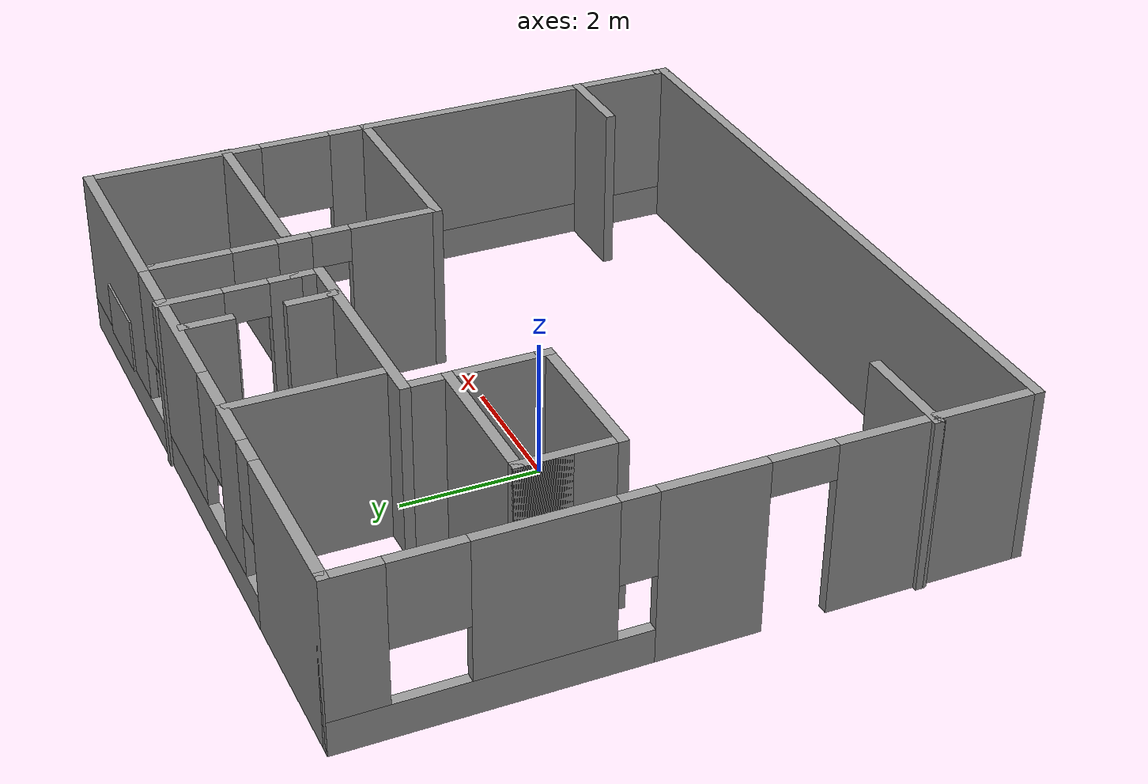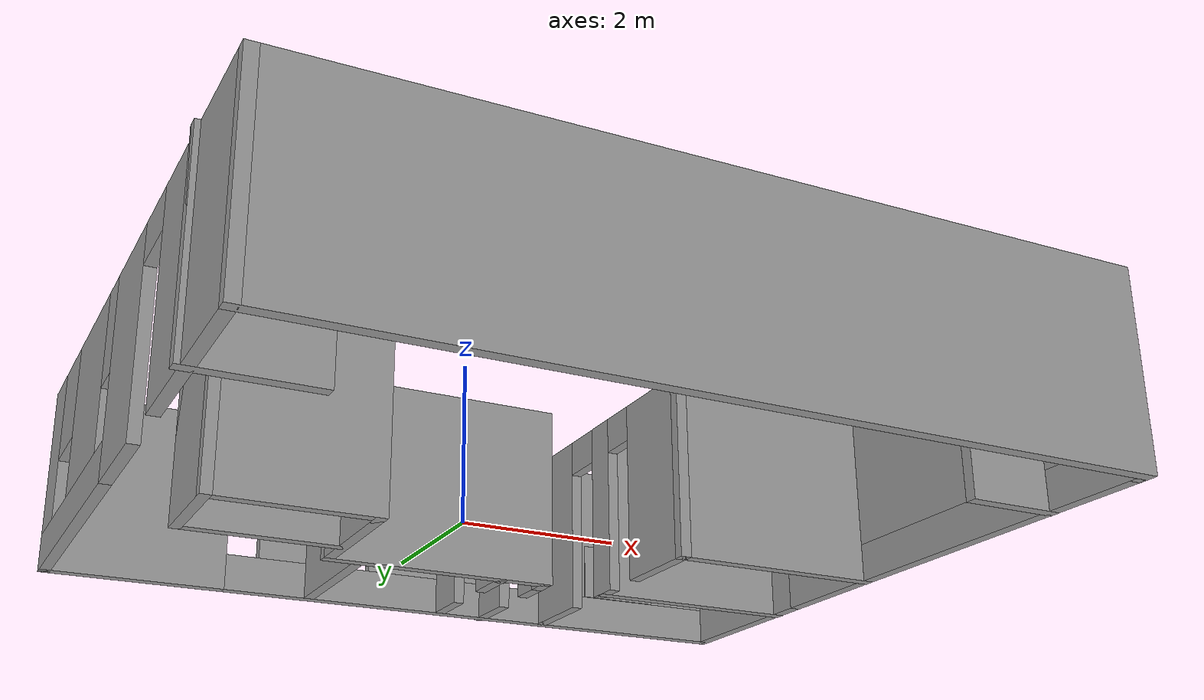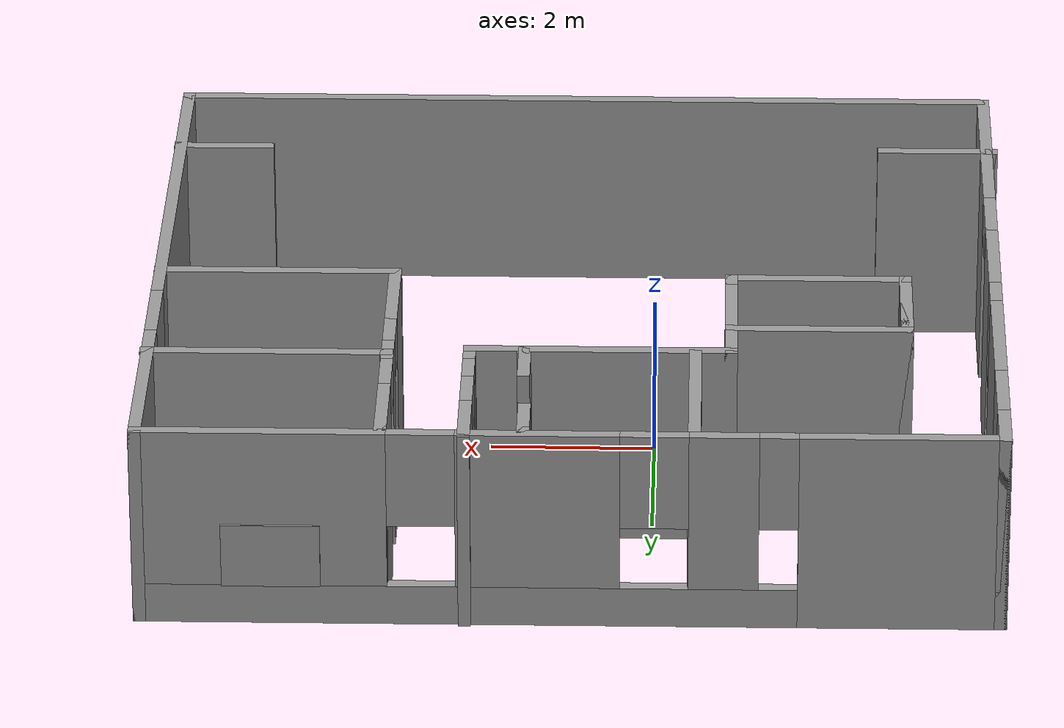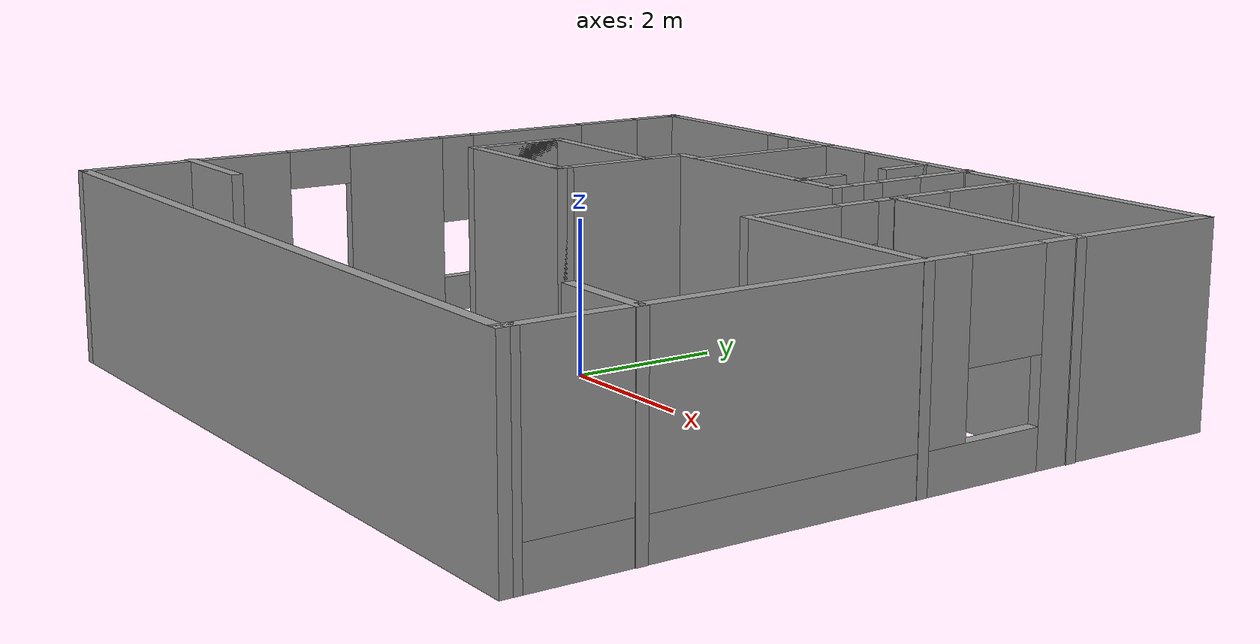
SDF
<?xml version='1.0'?>
<sdf version='1.7'>
  <model name='Floorplan2'>
    <pose>0.917459 -0.180411 0 0 -0 0</pose>
    <link name='Wall_0'>
      <pose>0.025131 4.5809 0 0 -0 0</pose>
      <visual name='Wall_0_Visual_0'>
        <pose>-3.89474 0 1.25 0 -0 0</pose>
        <geometry>
          <box>
            <size>2.46053 0.15 2.5</size>
          </box>
        </geometry>
        <material>
          <script>
            <uri>file://media/materials/scripts/gazebo.material</uri>
            <name>Gazebo/Grey</name>
          </script>
          <ambient>1 1 1 1</ambient>
        </material>
        <meta>
          <layer>0</layer>
        </meta>
      </visual>
      <collision name='Wall_0_Collision_0'>
        <geometry>
          <box>
            <size>2.46053 0.15 2.5</size>
          </box>
        </geometry>
        <pose>-3.89474 0 1.25 0 -0 0</pose>
      </collision>
      <visual name='Wall_0_Visual_1'>
        <pose>1.23026 0 0.25 0 -0 0</pose>
        <geometry>
          <box>
            <size>7.78948 0.15 0.5</size>
          </box>
        </geometry>
        <material>
          <script>
            <uri>file://media/materials/scripts/gazebo.material</uri>
            <name>Gazebo/Grey</name>
          </script>
          <ambient>1 1 1 1</ambient>
        </material>
        <meta>
          <layer>0</layer>
        </meta>
      </visual>
      <collision name='Wall_0_Collision_1'>
        <geometry>
          <box>
            <size>7.78948 0.15 0.5</size>
          </box>
        </geometry>
        <pose>1.23026 0 0.25 0 -0 0</pose>
      </collision>
      <visual name='Wall_0_Visual_2'>
        <pose>-1.79448 0 1.5 0 -0 0</pose>
        <geometry>
          <box>
            <size>0.82 0.15 2</size>
          </box>
        </geometry>
        <material>
          <script>
            <uri>file://media/materials/scripts/gazebo.material</uri>
            <name>Gazebo/Grey</name>
          </script>
          <ambient>1 1 1 1</ambient>
        </material>
        <meta>
          <layer>0</layer>
        </meta>
      </visual>
      <collision name='Wall_0_Collision_2'>
        <geometry>
          <box>
            <size>0.82 0.15 2</size>
          </box>
        </geometry>
        <pose>-1.79448 0 1.5 0 -0 0</pose>
      </collision>
      <visual name='Wall_0_Visual_3'>
        <pose>0.375525 0 1.5 0 -0 0</pose>
        <geometry>
          <box>
            <size>1.92 0.15 2</size>
          </box>
        </geometry>
        <material>
          <script>
            <uri>file://media/materials/scripts/gazebo.material</uri>
            <name>Gazebo/Grey</name>
          </script>
          <ambient>1 1 1 1</ambient>
        </material>
        <meta>
          <layer>0</layer>
        </meta>
      </visual>
      <collision name='Wall_0_Collision_3'>
        <geometry>
          <box>
            <size>1.92 0.15 2</size>
          </box>
        </geometry>
        <pose>0.375525 0 1.5 0 -0 0</pose>
      </collision>
      <visual name='Wall_0_Visual_4'>
        <pose>3.63026 0 1.5 0 -0 0</pose>
        <geometry>
          <box>
            <size>2.98948 0.15 2</size>
          </box>
        </geometry>
        <material>
          <script>
            <uri>file://media/materials/scripts/gazebo.material</uri>
            <name>Gazebo/Grey</name>
          </script>
          <ambient>1 1 1 1</ambient>
        </material>
        <meta>
          <layer>0</layer>
        </meta>
      </visual>
      <collision name='Wall_0_Collision_4'>
        <geometry>
          <box>
            <size>2.98948 0.15 2</size>
          </box>
        </geometry>
        <pose>3.63026 0 1.5 0 -0 0</pose>
      </collision>
      <visual name='Wall_0_Visual_5'>
        <pose>-2.43447 0 1.9 0 -0 0</pose>
        <geometry>
          <box>
            <size>0.46 0.15 1.2</size>
          </box>
        </geometry>
        <material>
          <script>
            <uri>file://media/materials/scripts/gazebo.material</uri>
            <name>Gazebo/Grey</name>
          </script>
          <ambient>1 1 1 1</ambient>
        </material>
        <meta>
          <layer>0</layer>
        </meta>
      </visual>
      <collision name='Wall_0_Collision_5'>
        <geometry>
          <box>
            <size>0.46 0.15 1.2</size>
          </box>
        </geometry>
        <pose>-2.43447 0 1.9 0 -0 0</pose>
      </collision>
      <visual name='Wall_0_Visual_6'>
        <pose>-0.984475 0 1.9 0 -0 0</pose>
        <geometry>
          <box>
            <size>0.8 0.15 1.2</size>
          </box>
        </geometry>
        <material>
          <script>
            <uri>file://media/materials/scripts/gazebo.material</uri>
            <name>Gazebo/Grey</name>
          </script>
          <ambient>1 1 1 1</ambient>
        </material>
        <meta>
          <layer>0</layer>
        </meta>
      </visual>
      <collision name='Wall_0_Collision_6'>
        <geometry>
          <box>
            <size>0.8 0.15 1.2</size>
          </box>
        </geometry>
        <pose>-0.984475 0 1.9 0 -0 0</pose>
      </collision>
      <visual name='Wall_0_Visual_7'>
        <pose>1.73552 0 1.9 0 -0 0</pose>
        <geometry>
          <box>
            <size>0.8 0.15 1.2</size>
          </box>
        </geometry>
        <material>
          <script>
            <uri>file://media/materials/scripts/gazebo.material</uri>
            <name>Gazebo/Grey</name>
          </script>
          <ambient>1 1 1 1</ambient>
        </material>
        <meta>
          <layer>0</layer>
        </meta>
      </visual>
      <collision name='Wall_0_Collision_7'>
        <geometry>
          <box>
            <size>0.8 0.15 1.2</size>
          </box>
        </geometry>
        <pose>1.73552 0 1.9 0 -0 0</pose>
      </collision>
    </link>
    <link name='Wall_1'>
      <pose>5.07513 0.030898 0 0 -0 -1.5708</pose>
      <visual name='Wall_1_Visual_0'>
        <pose>-3.31014 0 1.25 0 -0 0</pose>
        <geometry>
          <box>
            <size>2.62972 0.15 2.5</size>
          </box>
        </geometry>
        <material>
          <script>
            <uri>file://media/materials/scripts/gazebo.material</uri>
            <name>Gazebo/Grey</name>
          </script>
          <ambient>1 1 1 1</ambient>
        </material>
        <meta>
          <layer>0</layer>
        </meta>
      </visual>
      <collision name='Wall_1_Collision_0'>
        <geometry>
          <box>
            <size>2.62972 0.15 2.5</size>
          </box>
        </geometry>
        <pose>-3.31014 0 1.25 0 -0 0</pose>
      </collision>
      <visual name='Wall_1_Visual_1'>
        <pose>1.31486 0 0.25 0 -0 0</pose>
        <geometry>
          <box>
            <size>6.62028 0.15 0.5</size>
          </box>
        </geometry>
        <material>
          <script>
            <uri>file://media/materials/scripts/gazebo.material</uri>
            <name>Gazebo/Grey</name>
          </script>
          <ambient>1 1 1 1</ambient>
        </material>
        <meta>
          <layer>0</layer>
        </meta>
      </visual>
      <collision name='Wall_1_Collision_1'>
        <geometry>
          <box>
            <size>6.62028 0.15 0.5</size>
          </box>
        </geometry>
        <pose>1.31486 0 0.25 0 -0 0</pose>
      </collision>
      <visual name='Wall_1_Visual_2'>
        <pose>1.84486 0 1.5 0 -0 0</pose>
        <geometry>
          <box>
            <size>5.56028 0.15 2</size>
          </box>
        </geometry>
        <material>
          <script>
            <uri>file://media/materials/scripts/gazebo.material</uri>
            <name>Gazebo/Grey</name>
          </script>
          <ambient>1 1 1 1</ambient>
        </material>
        <meta>
          <layer>0</layer>
        </meta>
      </visual>
      <collision name='Wall_1_Collision_2'>
        <geometry>
          <box>
            <size>5.56028 0.15 2</size>
          </box>
        </geometry>
        <pose>1.84486 0 1.5 0 -0 0</pose>
      </collision>
      <visual name='Wall_1_Visual_3'>
        <pose>-1.46528 0 1.9 0 -0 0</pose>
        <geometry>
          <box>
            <size>1.06 0.15 1.2</size>
          </box>
        </geometry>
        <material>
          <script>
            <uri>file://media/materials/scripts/gazebo.material</uri>
            <name>Gazebo/Grey</name>
          </script>
          <ambient>1 1 1 1</ambient>
        </material>
        <meta>
          <layer>0</layer>
        </meta>
      </visual>
      <collision name='Wall_1_Collision_3'>
        <geometry>
          <box>
            <size>1.06 0.15 1.2</size>
          </box>
        </geometry>
        <pose>-1.46528 0 1.9 0 -0 0</pose>
      </collision>
    </link>
    <link name='Wall_10'>
      <collision name='Wall_10_Collision'>
        <geometry>
          <box>
            <size>1.25 0.15 2.5</size>
          </box>
        </geometry>
        <pose>0 0 1.25 0 -0 0</pose>
      </collision>
      <visual name='Wall_10_Visual'>
        <pose>0 0 1.25 0 -0 0</pose>
        <geometry>
          <box>
            <size>1.25 0.15 2.5</size>
          </box>
        </geometry>
        <material>
          <script>
            <uri>file://media/materials/scripts/gazebo.material</uri>
            <name>Gazebo/Grey</name>
          </script>
          <ambient>1 1 1 1</ambient>
        </material>
        <meta>
          <layer>0</layer>
        </meta>
      </visual>
      <pose>4.5325 -3.13926 0 0 -0 0</pose>
    </link>
    <link name='Wall_11'>
      <collision name='Wall_11_Collision'>
        <geometry>
          <box>
            <size>0.15 0.15 2.5</size>
          </box>
        </geometry>
        <pose>0 0 1.25 0 -0 0</pose>
      </collision>
      <visual name='Wall_11_Visual'>
        <pose>0 0 1.25 0 -0 0</pose>
        <geometry>
          <box>
            <size>0.15 0.15 2.5</size>
          </box>
        </geometry>
        <material>
          <script>
            <uri>file://media/materials/scripts/gazebo.material</uri>
            <name>Gazebo/Grey</name>
          </script>
          <ambient>1 1 1 1</ambient>
        </material>
        <meta>
          <layer>0</layer>
        </meta>
      </visual>
      <pose>5.0825 -3.13926 0 0 -0 0</pose>
    </link>
    <link name='Wall_13'>
      <collision name='Wall_13_Collision'>
        <geometry>
          <box>
            <size>3 0.15 2.5</size>
          </box>
        </geometry>
        <pose>0 0 1.25 0 -0 0</pose>
      </collision>
      <visual name='Wall_13_Visual'>
        <pose>0 0 1.25 0 -0 0</pose>
        <geometry>
          <box>
            <size>3 0.15 2.5</size>
          </box>
        </geometry>
        <material>
          <script>
            <uri>file://media/materials/scripts/gazebo.material</uri>
            <name>Gazebo/Grey</name>
          </script>
          <ambient>1 1 1 1</ambient>
        </material>
        <meta>
          <layer>0</layer>
        </meta>
      </visual>
      <pose>3.65315 0.373782 0 0 -0 3.14159</pose>
    </link>
    <link name='Wall_14'>
      <pose>2.22815 2.42378 0 0 -0 1.5708</pose>
      <visual name='Wall_14_Visual_0'>
        <pose>-1.44632 0 1.25 0 -0 0</pose>
        <geometry>
          <box>
            <size>1.35737 0.15 2.5</size>
          </box>
        </geometry>
        <material>
          <script>
            <uri>file://media/materials/scripts/gazebo.material</uri>
            <name>Gazebo/Grey</name>
          </script>
          <ambient>1 1 1 1</ambient>
        </material>
        <meta>
          <layer>0</layer>
        </meta>
      </visual>
      <collision name='Wall_14_Collision_0'>
        <geometry>
          <box>
            <size>1.35737 0.15 2.5</size>
          </box>
        </geometry>
        <pose>-1.44632 0 1.25 0 -0 0</pose>
      </collision>
      <visual name='Wall_14_Visual_1'>
        <pose>0.039069 0 1.25 0 -0 0</pose>
        <geometry>
          <box>
            <size>0.484072 0.15 2.5</size>
          </box>
        </geometry>
        <material>
          <script>
            <uri>file://media/materials/scripts/gazebo.material</uri>
            <name>Gazebo/Grey</name>
          </script>
          <ambient>1 1 1 1</ambient>
        </material>
        <meta>
          <layer>0</layer>
        </meta>
      </visual>
      <collision name='Wall_14_Collision_1'>
        <geometry>
          <box>
            <size>0.484072 0.15 2.5</size>
          </box>
        </geometry>
        <pose>0.039069 0 1.25 0 -0 0</pose>
      </collision>
      <visual name='Wall_14_Visual_2'>
        <pose>1.52484 0 1.25 0 -0 0</pose>
        <geometry>
          <box>
            <size>1.20033 0.15 2.5</size>
          </box>
        </geometry>
        <material>
          <script>
            <uri>file://media/materials/scripts/gazebo.material</uri>
            <name>Gazebo/Grey</name>
          </script>
          <ambient>1 1 1 1</ambient>
        </material>
        <meta>
          <layer>0</layer>
        </meta>
      </visual>
      <collision name='Wall_14_Collision_2'>
        <geometry>
          <box>
            <size>1.20033 0.15 2.5</size>
          </box>
        </geometry>
        <pose>1.52484 0 1.25 0 -0 0</pose>
      </collision>
      <visual name='Wall_14_Visual_3'>
        <pose>-0.4853 0 2.25 0 -0 0</pose>
        <geometry>
          <box>
            <size>0.564667 0.15 0.5</size>
          </box>
        </geometry>
        <material>
          <script>
            <uri>file://media/materials/scripts/gazebo.material</uri>
            <name>Gazebo/Grey</name>
          </script>
          <ambient>1 1 1 1</ambient>
        </material>
        <meta>
          <layer>0</layer>
        </meta>
      </visual>
      <collision name='Wall_14_Collision_3'>
        <geometry>
          <box>
            <size>0.564667 0.15 0.5</size>
          </box>
        </geometry>
        <pose>-0.4853 0 2.25 0 -0 0</pose>
      </collision>
      <visual name='Wall_14_Visual_4'>
        <pose>0.602889 0 2.25 0 -0 0</pose>
        <geometry>
          <box>
            <size>0.643569 0.15 0.5</size>
          </box>
        </geometry>
        <material>
          <script>
            <uri>file://media/materials/scripts/gazebo.material</uri>
            <name>Gazebo/Grey</name>
          </script>
          <ambient>1 1 1 1</ambient>
        </material>
        <meta>
          <layer>0</layer>
        </meta>
      </visual>
      <collision name='Wall_14_Collision_4'>
        <geometry>
          <box>
            <size>0.643569 0.15 0.5</size>
          </box>
        </geometry>
        <pose>0.602889 0 2.25 0 -0 0</pose>
      </collision>
    </link>
    <link name='Wall_15'>
      <collision name='Wall_15_Collision'>
        <geometry>
          <box>
            <size>0.15 0.15 2.5</size>
          </box>
        </geometry>
        <pose>0 0 1.25 0 -0 0</pose>
      </collision>
      <visual name='Wall_15_Visual'>
        <pose>0 0 1.25 0 -0 0</pose>
        <geometry>
          <box>
            <size>0.15 0.15 2.5</size>
          </box>
        </geometry>
        <material>
          <script>
            <uri>file://media/materials/scripts/gazebo.material</uri>
            <name>Gazebo/Grey</name>
          </script>
          <ambient>1 1 1 1</ambient>
        </material>
        <meta>
          <layer>0</layer>
        </meta>
      </visual>
      <pose>2.22815 4.47378 0 0 -0 0</pose>
    </link>
    <link name='Wall_17'>
      <collision name='Wall_17_Collision'>
        <geometry>
          <box>
            <size>3 0.15 2.5</size>
          </box>
        </geometry>
        <pose>0 0 1.25 0 -0 0</pose>
      </collision>
      <visual name='Wall_17_Visual'>
        <pose>0 0 1.25 0 -0 0</pose>
        <geometry>
          <box>
            <size>3 0.15 2.5</size>
          </box>
        </geometry>
        <material>
          <script>
            <uri>file://media/materials/scripts/gazebo.material</uri>
            <name>Gazebo/Grey</name>
          </script>
          <ambient>1 1 1 1</ambient>
        </material>
        <meta>
          <layer>0</layer>
        </meta>
      </visual>
      <pose>3.66424 2.53751 0 0 -0 3.14159</pose>
    </link>
    <link name='Wall_18'>
      <collision name='Wall_18_Collision'>
        <geometry>
          <box>
            <size>0.15 0.15 2.5</size>
          </box>
        </geometry>
        <pose>0 0 1.25 0 -0 0</pose>
      </collision>
      <visual name='Wall_18_Visual'>
        <pose>0 0 1.25 0 -0 0</pose>
        <geometry>
          <box>
            <size>0.15 0.15 2.5</size>
          </box>
        </geometry>
        <material>
          <script>
            <uri>file://media/materials/scripts/gazebo.material</uri>
            <name>Gazebo/Grey</name>
          </script>
          <ambient>1 1 1 1</ambient>
        </material>
        <meta>
          <layer>0</layer>
        </meta>
      </visual>
      <pose>2.23924 2.53751 0 0 -0 0</pose>
    </link>
    <link name='Wall_2'>
      <collision name='Wall_2_Collision'>
        <geometry>
          <box>
            <size>0.25 0.15 2.5</size>
          </box>
        </geometry>
        <pose>0 0 1.25 0 -0 0</pose>
      </collision>
      <visual name='Wall_2_Visual'>
        <pose>0 0 1.25 0 -0 0</pose>
        <geometry>
          <box>
            <size>0.25 0.15 2.5</size>
          </box>
        </geometry>
        <material>
          <script>
            <uri>file://media/materials/scripts/gazebo.material</uri>
            <name>Gazebo/Grey</name>
          </script>
          <ambient>1 1 1 1</ambient>
        </material>
        <meta>
          <layer>0</layer>
        </meta>
      </visual>
      <pose>5.07513 -4.5691 0 0 -0 -1.5708</pose>
    </link>
    <link name='Wall_20'>
      <pose>1.25695 3.6941 0 0 -0 -1.5708</pose>
      <visual name='Wall_20_Visual_0'>
        <pose>-0.538045 0 1.25 0 -0 0</pose>
        <geometry>
          <box>
            <size>0.92391 0.15 2.5</size>
          </box>
        </geometry>
        <material>
          <script>
            <uri>file://media/materials/scripts/gazebo.material</uri>
            <name>Gazebo/Grey</name>
          </script>
          <ambient>1 1 1 1</ambient>
        </material>
        <meta>
          <layer>0</layer>
        </meta>
      </visual>
      <collision name='Wall_20_Collision_0'>
        <geometry>
          <box>
            <size>0.92391 0.15 2.5</size>
          </box>
        </geometry>
        <pose>-0.538045 0 1.25 0 -0 0</pose>
      </collision>
      <visual name='Wall_20_Visual_1'>
        <pose>0.775648 0 1.25 0 -0 0</pose>
        <geometry>
          <box>
            <size>0.448704 0.15 2.5</size>
          </box>
        </geometry>
        <material>
          <script>
            <uri>file://media/materials/scripts/gazebo.material</uri>
            <name>Gazebo/Grey</name>
          </script>
          <ambient>1 1 1 1</ambient>
        </material>
        <meta>
          <layer>0</layer>
        </meta>
      </visual>
      <collision name='Wall_20_Collision_1'>
        <geometry>
          <box>
            <size>0.448704 0.15 2.5</size>
          </box>
        </geometry>
        <pose>0.775648 0 1.25 0 -0 0</pose>
      </collision>
      <visual name='Wall_20_Visual_2'>
        <pose>0.237603 0 2.25 0 -0 0</pose>
        <geometry>
          <box>
            <size>0.627386 0.15 0.5</size>
          </box>
        </geometry>
        <material>
          <script>
            <uri>file://media/materials/scripts/gazebo.material</uri>
            <name>Gazebo/Grey</name>
          </script>
          <ambient>1 1 1 1</ambient>
        </material>
        <meta>
          <layer>0</layer>
        </meta>
      </visual>
      <collision name='Wall_20_Collision_2'>
        <geometry>
          <box>
            <size>0.627386 0.15 0.5</size>
          </box>
        </geometry>
        <pose>0.237603 0 2.25 0 -0 0</pose>
      </collision>
    </link>
    <link name='Wall_21'>
      <collision name='Wall_21_Collision'>
        <geometry>
          <box>
            <size>0.5 0.15 2.5</size>
          </box>
        </geometry>
        <pose>0 0 1.25 0 -0 0</pose>
      </collision>
      <visual name='Wall_21_Visual'>
        <pose>0 0 1.25 0 -0 0</pose>
        <geometry>
          <box>
            <size>0.5 0.15 2.5</size>
          </box>
        </geometry>
        <material>
          <script>
            <uri>file://media/materials/scripts/gazebo.material</uri>
            <name>Gazebo/Grey</name>
          </script>
          <ambient>1 1 1 1</ambient>
        </material>
        <meta>
          <layer>0</layer>
        </meta>
      </visual>
      <pose>1.25695 2.5941 0 0 -0 -1.5708</pose>
    </link>
    <link name='Wall_22'>
      <collision name='Wall_22_Collision'>
        <geometry>
          <box>
            <size>3.25 0.15 2.5</size>
          </box>
        </geometry>
        <pose>0 0 1.25 0 -0 0</pose>
      </collision>
      <visual name='Wall_22_Visual'>
        <pose>0 0 1.25 0 -0 0</pose>
        <geometry>
          <box>
            <size>3.25 0.15 2.5</size>
          </box>
        </geometry>
        <material>
          <script>
            <uri>file://media/materials/scripts/gazebo.material</uri>
            <name>Gazebo/Grey</name>
          </script>
          <ambient>1 1 1 1</ambient>
        </material>
        <meta>
          <layer>0</layer>
        </meta>
      </visual>
      <pose>-0.293048 2.4191 0 0 -0 3.14159</pose>
    </link>
    <link name='Wall_23'>
      <collision name='Wall_23_Collision'>
        <geometry>
          <box>
            <size>2 0.15 2.5</size>
          </box>
        </geometry>
        <pose>0 0 1.25 0 -0 0</pose>
      </collision>
      <visual name='Wall_23_Visual'>
        <pose>0 0 1.25 0 -0 0</pose>
        <geometry>
          <box>
            <size>2 0.15 2.5</size>
          </box>
        </geometry>
        <material>
          <script>
            <uri>file://media/materials/scripts/gazebo.material</uri>
            <name>Gazebo/Grey</name>
          </script>
          <ambient>1 1 1 1</ambient>
        </material>
        <meta>
          <layer>0</layer>
        </meta>
      </visual>
      <pose>-1.84305 1.4941 0 0 -0 -1.5708</pose>
    </link>
    <link name='Wall_24'>
      <collision name='Wall_24_Collision'>
        <geometry>
          <box>
            <size>0.25 0.15 2.5</size>
          </box>
        </geometry>
        <pose>0 0 1.25 0 -0 0</pose>
      </collision>
      <visual name='Wall_24_Visual'>
        <pose>0 0 1.25 0 -0 0</pose>
        <geometry>
          <box>
            <size>0.25 0.15 2.5</size>
          </box>
        </geometry>
        <material>
          <script>
            <uri>file://media/materials/scripts/gazebo.material</uri>
            <name>Gazebo/Grey</name>
          </script>
          <ambient>1 1 1 1</ambient>
        </material>
        <meta>
          <layer>0</layer>
        </meta>
      </visual>
      <pose>-1.84305 0.519103 0 0 -0 -1.5708</pose>
    </link>
    <link name='Wall_25'>
      <collision name='Wall_25_Collision'>
        <geometry>
          <box>
            <size>2.25 0.15 2.5</size>
          </box>
        </geometry>
        <pose>0 0 1.25 0 -0 0</pose>
      </collision>
      <visual name='Wall_25_Visual'>
        <pose>0 0 1.25 0 -0 0</pose>
        <geometry>
          <box>
            <size>2.25 0.15 2.5</size>
          </box>
        </geometry>
        <material>
          <script>
            <uri>file://media/materials/scripts/gazebo.material</uri>
            <name>Gazebo/Grey</name>
          </script>
          <ambient>1 1 1 1</ambient>
        </material>
        <meta>
          <layer>0</layer>
        </meta>
      </visual>
      <pose>-2.89305 0.469103 0 0 -0 3.14159</pose>
    </link>
    <link name='Wall_26'>
      <pose>-3.94305 1.1441 0 0 -0 1.5708</pose>
      <visual name='Wall_26_Visual_0'>
        <pose>0 0 1.25 0 -0 0</pose>
        <geometry>
          <box>
            <size>1.5 0.15 2.5</size>
          </box>
        </geometry>
        <material>
          <script>
            <uri>file://media/materials/scripts/gazebo.material</uri>
            <name>Gazebo/Grey</name>
          </script>
          <ambient>1 1 1 1</ambient>
        </material>
        <meta>
          <layer>0</layer>
        </meta>
      </visual>
      <collision name='Wall_26_Collision_0'>
        <geometry>
          <box>
            <size>1.5 0.15 2.5</size>
          </box>
        </geometry>
        <pose>0 0 1.25 0 -0 0</pose>
      </collision>
      <visual name='Wall_26_Visual_1'>
        <pose>0.361529 0 1.25 0 -0 0</pose>
        <geometry>
          <box>
            <size>0.776943 0.15 2.5</size>
          </box>
        </geometry>
        <material>
          <script>
            <uri>file://media/materials/scripts/gazebo.material</uri>
            <name>Gazebo/Grey</name>
          </script>
          <ambient>1 1 1 1</ambient>
        </material>
        <meta>
          <layer>0</layer>
        </meta>
      </visual>
      <collision name='Wall_26_Collision_1'>
        <geometry>
          <box>
            <size>0.776943 0.15 2.5</size>
          </box>
        </geometry>
        <pose>0.361529 0 1.25 0 -0 0</pose>
      </collision>
    </link>
    <link name='Wall_27'>
      <collision name='Wall_27_Collision'>
        <geometry>
          <box>
            <size>2.25 0.15 2.5</size>
          </box>
        </geometry>
        <pose>0 0 1.25 0 -0 0</pose>
      </collision>
      <visual name='Wall_27_Visual'>
        <pose>0 0 1.25 0 -0 0</pose>
        <geometry>
          <box>
            <size>2.25 0.15 2.5</size>
          </box>
        </geometry>
        <material>
          <script>
            <uri>file://media/materials/scripts/gazebo.material</uri>
            <name>Gazebo/Grey</name>
          </script>
          <ambient>1 1 1 1</ambient>
        </material>
        <meta>
          <layer>0</layer>
        </meta>
      </visual>
      <pose>-2.89305 1.8191 0 0 -0 0</pose>
    </link>
    <link name='Wall_28'>
      <collision name='Wall_28_Collision'>
        <geometry>
          <box>
            <size>0.15 0.15 2.5</size>
          </box>
        </geometry>
        <pose>0 0 1.25 0 -0 0</pose>
      </collision>
      <visual name='Wall_28_Visual'>
        <pose>0 0 1.25 0 -0 0</pose>
        <geometry>
          <box>
            <size>0.15 0.15 2.5</size>
          </box>
        </geometry>
        <material>
          <script>
            <uri>file://media/materials/scripts/gazebo.material</uri>
            <name>Gazebo/Grey</name>
          </script>
          <ambient>1 1 1 1</ambient>
        </material>
        <meta>
          <layer>0</layer>
        </meta>
      </visual>
      <pose>-1.84305 1.8191 0 0 -0 0</pose>
    </link>
    <link name='Wall_3'>
      <collision name='Wall_3_Collision'>
        <geometry>
          <box>
            <size>10.25 0.15 2.5</size>
          </box>
        </geometry>
        <pose>0 0 1.25 0 -0 0</pose>
      </collision>
      <visual name='Wall_3_Visual'>
        <pose>0 0 1.25 0 -0 0</pose>
        <geometry>
          <box>
            <size>10.25 0.15 2.5</size>
          </box>
        </geometry>
        <material>
          <script>
            <uri>file://media/materials/scripts/gazebo.material</uri>
            <name>Gazebo/Grey</name>
          </script>
          <ambient>1 1 1 1</ambient>
        </material>
        <meta>
          <layer>0</layer>
        </meta>
      </visual>
      <pose>0.025131 -4.6191 0 0 -0 3.14159</pose>
    </link>
    <link name='Wall_30'>
      <collision name='Wall_30_Collision'>
        <geometry>
          <box>
            <size>2.25 0.15 2.5</size>
          </box>
        </geometry>
        <pose>0 0 1.25 0 -0 0</pose>
      </collision>
      <visual name='Wall_30_Visual'>
        <pose>0 0 1.25 0 -0 0</pose>
        <geometry>
          <box>
            <size>2.25 0.15 2.5</size>
          </box>
        </geometry>
        <material>
          <script>
            <uri>file://media/materials/scripts/gazebo.material</uri>
            <name>Gazebo/Grey</name>
          </script>
          <ambient>1 1 1 1</ambient>
        </material>
        <meta>
          <layer>0</layer>
        </meta>
      </visual>
      <pose>-1.4225 3.4729 0 0 -0 1.5708</pose>
    </link>
    <link name='Wall_32'>
      <collision name='Wall_32_Collision'>
        <geometry>
          <box>
            <size>0.75 0.15 2.5</size>
          </box>
        </geometry>
        <pose>0 0 1.25 0 -0 0</pose>
      </collision>
      <visual name='Wall_32_Visual'>
        <pose>0 0 1.25 0 -0 0</pose>
        <geometry>
          <box>
            <size>0.75 0.15 2.5</size>
          </box>
        </geometry>
        <material>
          <script>
            <uri>file://media/materials/scripts/gazebo.material</uri>
            <name>Gazebo/Grey</name>
          </script>
          <ambient>1 1 1 1</ambient>
        </material>
        <meta>
          <layer>0</layer>
        </meta>
      </visual>
      <pose>0.601744 2.75077 0 0 -0 -1.5708</pose>
    </link>
    <link name='Wall_33'>
      <collision name='Wall_33_Collision'>
        <geometry>
          <box>
            <size>0.15 0.15 2.5</size>
          </box>
        </geometry>
        <pose>0 0 1.25 0 -0 0</pose>
      </collision>
      <visual name='Wall_33_Visual'>
        <pose>0 0 1.25 0 -0 0</pose>
        <geometry>
          <box>
            <size>0.15 0.15 2.5</size>
          </box>
        </geometry>
        <material>
          <script>
            <uri>file://media/materials/scripts/gazebo.material</uri>
            <name>Gazebo/Grey</name>
          </script>
          <ambient>1 1 1 1</ambient>
        </material>
        <meta>
          <layer>0</layer>
        </meta>
      </visual>
      <pose>0.621744 2.47077 0 0 -0 0</pose>
    </link>
    <link name='Wall_35'>
      <collision name='Wall_35_Collision'>
        <geometry>
          <box>
            <size>0.75 0.15 2.5</size>
          </box>
        </geometry>
        <pose>0 0 1.25 0 -0 0</pose>
      </collision>
      <visual name='Wall_35_Visual'>
        <pose>0 0 1.25 0 -0 0</pose>
        <geometry>
          <box>
            <size>0.75 0.15 2.5</size>
          </box>
        </geometry>
        <material>
          <script>
            <uri>file://media/materials/scripts/gazebo.material</uri>
            <name>Gazebo/Grey</name>
          </script>
          <ambient>1 1 1 1</ambient>
        </material>
        <meta>
          <layer>0</layer>
        </meta>
      </visual>
      <pose>0.569527 4.19133 0 0 -0 1.5708</pose>
    </link>
    <link name='Wall_36'>
      <collision name='Wall_36_Collision'>
        <geometry>
          <box>
            <size>0.15 0.15 2.5</size>
          </box>
        </geometry>
        <pose>0 0 1.25 0 -0 0</pose>
      </collision>
      <visual name='Wall_36_Visual'>
        <pose>0 0 1.25 0 -0 0</pose>
        <geometry>
          <box>
            <size>0.15 0.15 2.5</size>
          </box>
        </geometry>
        <material>
          <script>
            <uri>file://media/materials/scripts/gazebo.material</uri>
            <name>Gazebo/Grey</name>
          </script>
          <ambient>1 1 1 1</ambient>
        </material>
        <meta>
          <layer>0</layer>
        </meta>
      </visual>
      <pose>0.569527 4.49133 0 0 -0 0</pose>
    </link>
    <link name='Wall_4'>
      <pose>-5.02487 -0.019102 0 0 -0 1.5708</pose>
      <visual name='Wall_4_Visual_0'>
        <pose>-3.23816 0 1.25 0 -0 0</pose>
        <geometry>
          <box>
            <size>2.87367 0.15 2.5</size>
          </box>
        </geometry>
        <material>
          <script>
            <uri>file://media/materials/scripts/gazebo.material</uri>
            <name>Gazebo/Grey</name>
          </script>
          <ambient>1 1 1 1</ambient>
        </material>
        <meta>
          <layer>0</layer>
        </meta>
      </visual>
      <collision name='Wall_4_Collision_0'>
        <geometry>
          <box>
            <size>2.87367 0.15 2.5</size>
          </box>
        </geometry>
        <pose>-3.23816 0 1.25 0 -0 0</pose>
      </collision>
      <visual name='Wall_4_Visual_1'>
        <pose>-0.178025 0 1.25 0 -0 0</pose>
        <geometry>
          <box>
            <size>1.44661 0.15 2.5</size>
          </box>
        </geometry>
        <material>
          <script>
            <uri>file://media/materials/scripts/gazebo.material</uri>
            <name>Gazebo/Grey</name>
          </script>
          <ambient>1 1 1 1</ambient>
        </material>
        <meta>
          <layer>0</layer>
        </meta>
      </visual>
      <collision name='Wall_4_Collision_1'>
        <geometry>
          <box>
            <size>1.44661 0.15 2.5</size>
          </box>
        </geometry>
        <pose>-0.178025 0 1.25 0 -0 0</pose>
      </collision>
      <visual name='Wall_4_Visual_2'>
        <pose>2.61014 0 0.25 0 -0 0</pose>
        <geometry>
          <box>
            <size>4.12972 0.15 0.5</size>
          </box>
        </geometry>
        <material>
          <script>
            <uri>file://media/materials/scripts/gazebo.material</uri>
            <name>Gazebo/Grey</name>
          </script>
          <ambient>1 1 1 1</ambient>
        </material>
        <meta>
          <layer>0</layer>
        </meta>
      </visual>
      <collision name='Wall_4_Collision_2'>
        <geometry>
          <box>
            <size>4.12972 0.15 0.5</size>
          </box>
        </geometry>
        <pose>2.61014 0 0.25 0 -0 0</pose>
      </collision>
      <visual name='Wall_4_Visual_3'>
        <pose>1.96528 0 1.5 0 -0 0</pose>
        <geometry>
          <box>
            <size>1.84 0.15 2</size>
          </box>
        </geometry>
        <material>
          <script>
            <uri>file://media/materials/scripts/gazebo.material</uri>
            <name>Gazebo/Grey</name>
          </script>
          <ambient>1 1 1 1</ambient>
        </material>
        <meta>
          <layer>0</layer>
        </meta>
      </visual>
      <collision name='Wall_4_Collision_3'>
        <geometry>
          <box>
            <size>1.84 0.15 2</size>
          </box>
        </geometry>
        <pose>1.96528 0 1.5 0 -0 0</pose>
      </collision>
      <visual name='Wall_4_Visual_4'>
        <pose>4.28014 0 1.5 0 -0 0</pose>
        <geometry>
          <box>
            <size>0.789721 0.15 2</size>
          </box>
        </geometry>
        <material>
          <script>
            <uri>file://media/materials/scripts/gazebo.material</uri>
            <name>Gazebo/Grey</name>
          </script>
          <ambient>1 1 1 1</ambient>
        </material>
        <meta>
          <layer>0</layer>
        </meta>
      </visual>
      <collision name='Wall_4_Collision_4'>
        <geometry>
          <box>
            <size>0.789721 0.15 2</size>
          </box>
        </geometry>
        <pose>4.28014 0 1.5 0 -0 0</pose>
      </collision>
      <visual name='Wall_4_Visual_5'>
        <pose>0.795279 0 1.9 0 -0 0</pose>
        <geometry>
          <box>
            <size>0.5 0.15 1.2</size>
          </box>
        </geometry>
        <material>
          <script>
            <uri>file://media/materials/scripts/gazebo.material</uri>
            <name>Gazebo/Grey</name>
          </script>
          <ambient>1 1 1 1</ambient>
        </material>
        <meta>
          <layer>0</layer>
        </meta>
      </visual>
      <collision name='Wall_4_Collision_5'>
        <geometry>
          <box>
            <size>0.5 0.15 1.2</size>
          </box>
        </geometry>
        <pose>0.795279 0 1.9 0 -0 0</pose>
      </collision>
      <visual name='Wall_4_Visual_6'>
        <pose>3.38528 0 1.9 0 -0 0</pose>
        <geometry>
          <box>
            <size>1 0.15 1.2</size>
          </box>
        </geometry>
        <material>
          <script>
            <uri>file://media/materials/scripts/gazebo.material</uri>
            <name>Gazebo/Grey</name>
          </script>
          <ambient>1 1 1 1</ambient>
        </material>
        <meta>
          <layer>0</layer>
        </meta>
      </visual>
      <collision name='Wall_4_Collision_6'>
        <geometry>
          <box>
            <size>1 0.15 1.2</size>
          </box>
        </geometry>
        <pose>3.38528 0 1.9 0 -0 0</pose>
      </collision>
      <visual name='Wall_4_Visual_7'>
        <pose>-1.35133 0 2.25 0 -0 0</pose>
        <geometry>
          <box>
            <size>0.9 0.15 0.5</size>
          </box>
        </geometry>
        <material>
          <script>
            <uri>file://media/materials/scripts/gazebo.material</uri>
            <name>Gazebo/Grey</name>
          </script>
          <ambient>1 1 1 1</ambient>
        </material>
        <meta>
          <layer>0</layer>
        </meta>
      </visual>
      <collision name='Wall_4_Collision_7'>
        <geometry>
          <box>
            <size>0.9 0.15 0.5</size>
          </box>
        </geometry>
        <pose>-1.35133 0 2.25 0 -0 0</pose>
      </collision>
    </link>
    <link name='Wall_5'>
      <collision name='Wall_5_Collision'>
        <geometry>
          <box>
            <size>0.15 0.15 2.5</size>
          </box>
        </geometry>
        <pose>0 0 1.25 0 -0 0</pose>
      </collision>
      <visual name='Wall_5_Visual'>
        <pose>0 0 1.25 0 -0 0</pose>
        <geometry>
          <box>
            <size>0.15 0.15 2.5</size>
          </box>
        </geometry>
        <material>
          <script>
            <uri>file://media/materials/scripts/gazebo.material</uri>
            <name>Gazebo/Grey</name>
          </script>
          <ambient>1 1 1 1</ambient>
        </material>
        <meta>
          <layer>0</layer>
        </meta>
      </visual>
      <pose>-5.02487 4.5809 0 0 -0 0</pose>
    </link>
    <link name='Wall_7'>
      <collision name='Wall_7_Collision'>
        <geometry>
          <box>
            <size>1.5 0.15 2.5</size>
          </box>
        </geometry>
        <pose>0 0 1.25 0 -0 0</pose>
      </collision>
      <visual name='Wall_7_Visual'>
        <pose>0 0 1.25 0 -0 0</pose>
        <geometry>
          <box>
            <size>1.5 0.15 2.5</size>
          </box>
        </geometry>
        <material>
          <script>
            <uri>file://media/materials/scripts/gazebo.material</uri>
            <name>Gazebo/Grey</name>
          </script>
          <ambient>1 1 1 1</ambient>
        </material>
        <meta>
          <layer>0</layer>
        </meta>
      </visual>
      <pose>-4.41424 -3.15665 0 0 -0 3.14159</pose>
    </link>
    <link name='Wall_8'>
      <collision name='Wall_8_Collision'>
        <geometry>
          <box>
            <size>0.15 0.15 2.5</size>
          </box>
        </geometry>
        <pose>0 0 1.25 0 -0 0</pose>
      </collision>
      <visual name='Wall_8_Visual'>
        <pose>0 0 1.25 0 -0 0</pose>
        <geometry>
          <box>
            <size>0.15 0.15 2.5</size>
          </box>
        </geometry>
        <material>
          <script>
            <uri>file://media/materials/scripts/gazebo.material</uri>
            <name>Gazebo/Grey</name>
          </script>
          <ambient>1 1 1 1</ambient>
        </material>
        <meta>
          <layer>0</layer>
        </meta>
      </visual>
      <pose>-5.08924 -3.15665 0 0 -0 0</pose>
    </link>
    <link name='Window_5'>
      <collision name='Window_5_Collision'>
        <geometry>
          <box>
            <size>1.16 0.2 0.8</size>
          </box>
        </geometry>
        <pose>0 0 0.4 0 -0 0</pose>
      </collision>
      <visual name='Window_5_Visual'>
        <pose>0 0 0.4 0 -0 0</pose>
        <geometry>
          <box>
            <size>1.16 0.2 0.8</size>
          </box>
        </geometry>
        <material>
          <script>
            <uri>file://media/materials/scripts/gazebo.material</uri>
            <name>Gazebo/Grey</name>
          </script>
        </material>
      </visual>
      <pose>3.52066 4.58618 0.5 0 -0 0</pose>
    </link>
    <static>1</static>
  </model>
</sdf>
